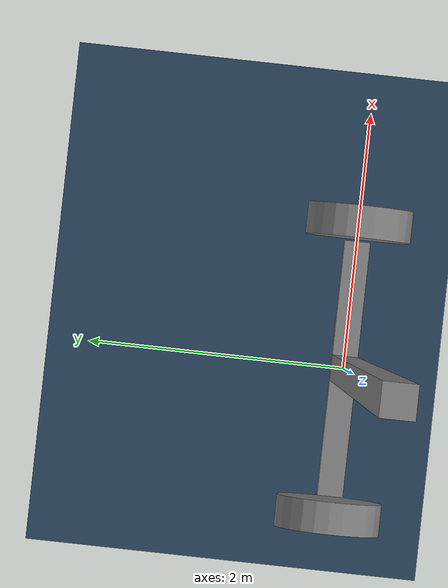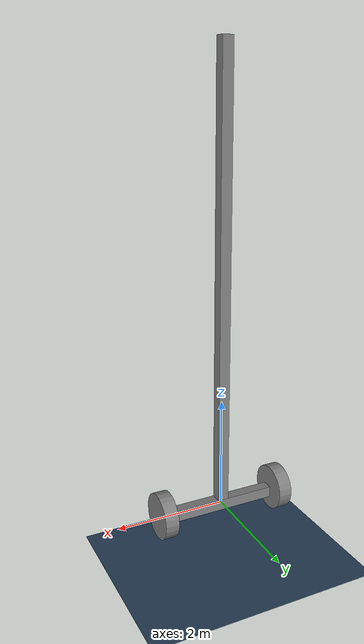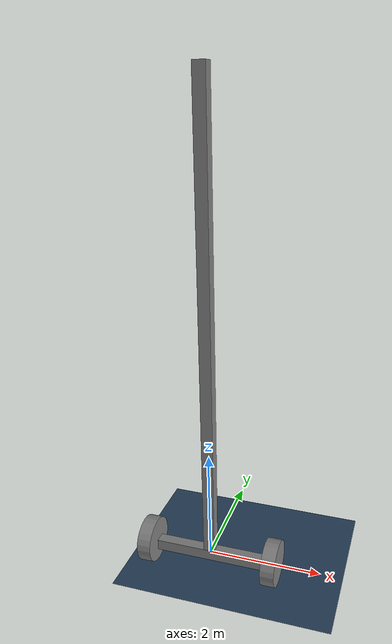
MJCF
<mujoco>

  <compiler inertiafromgeom="true"/>
  <default>
    <tendon/>
    <motor ctrlrange="-2 2"/>
  </default>
  <option gravity="0 0 -9.81" timestep="0.02" />

 <asset>
    <texture type="skybox" builtin="gradient" rgb1="0.8 0.8 0.8" rgb2="0 0 0" width="512" height="3072"/>
    <texture name="floor_tex" type="2d" builtin="checker" rgb1=".2 .3 .4" rgb2=".1 .2 .3" width="100" height="100" />
    <material name="floor_material" texture="floor_tex" texuniform="true" />
  </asset>

  <worldbody>
    <light cutoff="100" diffuse="1 1 1" dir="-0 0 -1.2" directional="true" exponent="1" pos="0 0 1.3" specular=".1 .1 .1"/>
    <geom conaffinity="1" condim="3" material="floor_material" name="floor" pos="0 0 -0.5" size="40 40 40" type="plane" rgba="0.5 0.5 0.5 1.0"/>
    z

    <body name="base">
        <joint type="free" name="free"/>

        <geom name="lower" type="box" size="0.1 0.1 1" quat="0.707107 0 0.707107 0" pos="0 0 0" mass="4"/>
        <geom name="upper" type="box" size="0.1 0.1 4" quat="0  0.707107 0 0" pos="0 0 4.1" mass="8"/>

        <body name="top">
          <geom name="top" type="sphere" size="0.1 0.1" mass="1e-5" pos="0 0 8"/>
        </body>

        <body name="right_wheel" pos="1.15 0 0.05">
          <geom name="right_wheel" type="cylinder" size="0.4125 0.125" quat="0 0.707107 0 0.707107" mass="26.5"/>
          <joint name="right_wheel" type="hinge" axis="-1 0 0"/>
        </body>

        <body name="left_wheel" pos="-1.15 0 0.05">
          <geom name="left_wheel" type="cylinder" size="0.4125 0.125" quat="0 0.707107 0 0.707107" mass="26.5"/>
          <joint name="left_wheel" type="hinge" axis="-1 0 0"/>
        </body>

    </body>
  </worldbody>

  <equality>
          <joint joint1="left_wheel" joint2="right_wheel" polycoef="0 1 0 0 0"/>"
  </equality>

  <actuator>
    <motor gear="200" joint="left_wheel" name="left_wheel" ctrlrange="-1 1"/>
  </actuator>j

</mujoco>
